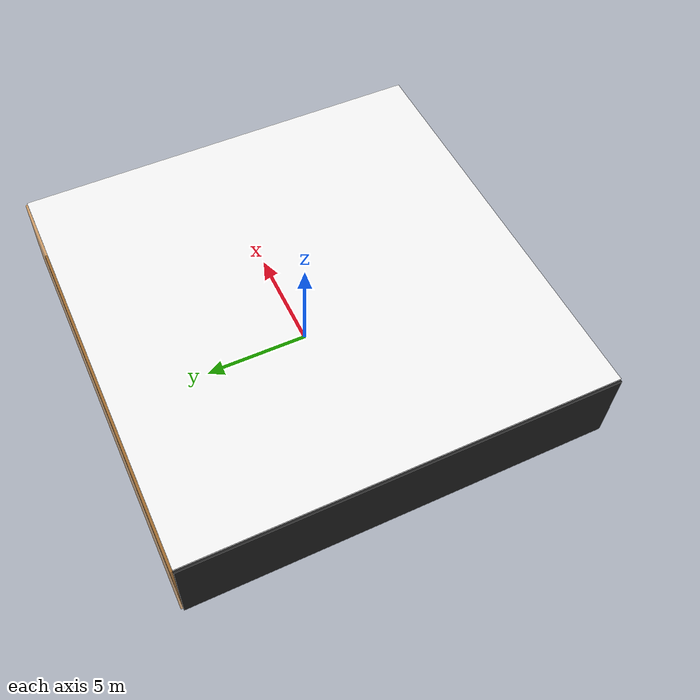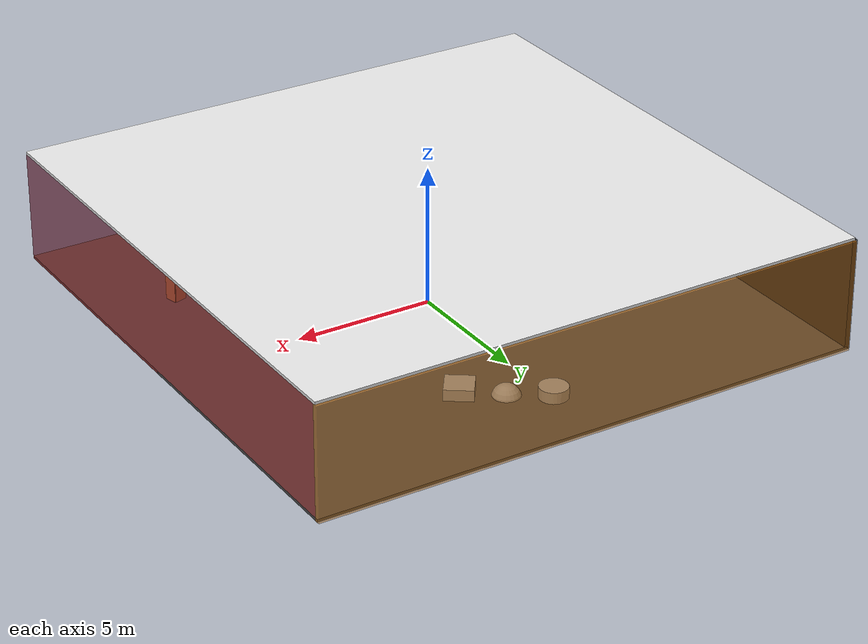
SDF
<sdf version="1.4">
 <world name="default">
  <physics type="ode">
   <max_step_size>0.001</max_step_size>
   <real_time_factor>1</real_time_factor>
   <real_time_update_rate>1000</real_time_update_rate>
   <gravity>0 0 -9.8</gravity>
  </physics>
  <scene><ambient>0.4 0.4 0.4 1</ambient><background>0.7 0.7 0.7 1</background><shadows>1</shadows></scene>
  <model name="Surrounding">
   <static>1</static>
   <link name="Ceiling">
    <collision name="Ceiling_Collision"><geometry><box><size>20 20 0.1</size></box></geometry></collision>
    <visual name="Ceiling_Visual">
     <geometry><box><size>20 20 0.1</size></box></geometry>
     <material>
      <script><uri>file://media/materials/scripts/gazebo.material</uri><name>Gazebo/White</name></script>
     </material>
    </visual>
    <pose>0 0 4.05 0 0 0</pose>
   </link>
   <link name="Wall_South">
    <collision name="Wall_South_Collision">
     <geometry><box><size>20 0 4</size></box></geometry>
     <pose>0 0 2 0 -0 0</pose>
    </collision>
    <visual name="Wall_South_Visual">
     <pose>0 0 2 0 -0 0</pose>
     <geometry><box><size>20 0 4</size></box></geometry>
     <material>
      <script><uri>file://media/materials/scripts/gazebo.material</uri><name>Gazebo/SkyBlue</name></script>
     </material>
    </visual>
    <velocity_decay><linear>0</linear><angular>0</angular></velocity_decay>
    <pose>0 -10 0 0 -0 0</pose>
   </link>
   <link name="Wall_East">
    <collision name="Wall_21_Collision">
     <geometry><box><size>20 0 4</size></box></geometry>
     <pose>0 0 2 0 -0 0</pose>
    </collision>
    <visual name="Wall_21_Visual">
     <pose>0 0 2 0 -0 0</pose>
     <geometry><box><size>20 0 4</size></box></geometry>
     <material>
      <script><uri>file://media/materials/scripts/gazebo.material</uri><name>Gazebo/RedTransparent</name></script>
     </material>
    </visual>
    <velocity_decay><linear>0</linear><angular>0</angular></velocity_decay>
    <pose>10 0 0 0 -0 1.5708</pose>
   </link>
   <link name="Wall_North">
    <collision name="Wall_22_Collision">
     <geometry><box><size>20 0.2 4</size></box></geometry>
     <pose>0 0 2 0 -0 0</pose>
    </collision>
    <visual name="Wall_22_Visual">
     <pose>0 0 2 0 -0 0</pose>
     <geometry><box><size>20 0.2 4</size></box></geometry>
     <material>
      <script>
       <uri>file://media/materials/scripts/gazebo.material</uri>
       <name>Gazebo/OrangeTransparent</name>
      </script>
     </material>
    </visual>
    <velocity_decay><linear>0</linear><angular>0</angular></velocity_decay>
    <pose>0 10 0 0 -0 0</pose>
   </link>
   <link name="Wall_West">
    <collision name="Wall_23_Collision">
     <geometry><box><size>20 0.2 4</size></box></geometry>
     <pose>0 0 2 0 -0 0</pose>
    </collision>
    <visual name="Wall_23_Visual">
     <pose>0 0 2 0 -0 0</pose>
     <geometry><box><size>20 0.2 4</size></box></geometry>
     <material>
      <script><uri>file://media/materials/scripts/gazebo.material</uri><name>Gazebo/FlatBlack</name></script>
     </material>
    </visual>
    <velocity_decay><linear>0</linear><angular>0</angular></velocity_decay>
    <pose>-10 0 0 0 0 -1.5708</pose>
   </link>
   <link name="Ground_link">
    <collision name="collision">
     <pose>0 0 .05 0 -0 0</pose>
     <geometry><box><size>20 20 0.1</size></box></geometry>
    </collision>
    <visual name="visual">
     <pose>0 0 .05 0 -0 0</pose>
     <geometry><box><size>20 20 0.1</size></box></geometry>
     <material>
      <script><uri>file://media/materials/scripts/gazebo.material</uri><name>Gazebo/DarkGrey</name></script>
     </material>
    </visual>
   </link>
   <static>1</static>
  </model>
  <spherical_coordinates>
   <surface_model>EARTH_WGS84</surface_model>
   <latitude_deg>0</latitude_deg>
   <longitude_deg>0</longitude_deg>
   <elevation>0</elevation>
   <heading_deg>0</heading_deg>
  </spherical_coordinates>
  <light name="lightball_0" type="diffuse">
   <diffuse>0.8 0.8 0.8 1</diffuse>
   <specular>0.2 0.2 0.2 1</specular>
   <attenuation>
    <range>100</range>
    <constant>0.7</constant>
    <linear>0.01</linear>
    <quadratic>0.001</quadratic>
   </attenuation>
   <direction>-0.5 0.1 -0.9</direction>
   <pose>4.89719183737 8.60299178508 1.24293634096 0 0 0</pose>
  </light>
  <light name="lightball_1" type="diffuse">
   <diffuse>0.8 0.8 0.8 1</diffuse>
   <specular>0.2 0.2 0.2 1</specular>
   <attenuation>
    <range>100</range>
    <constant>0.7</constant>
    <linear>0.01</linear>
    <quadratic>0.001</quadratic>
   </attenuation>
   <direction>-0.5 0.1 -0.9</direction>
   <pose>7.99422261866 9.20994861858 2.72450403377 0 0 0</pose>
  </light>
  <light name="lightball_2" type="diffuse">
   <diffuse>0.8 0.8 0.8 1</diffuse>
   <specular>0.2 0.2 0.2 1</specular>
   <attenuation>
    <range>100</range>
    <constant>0.7</constant>
    <linear>0.01</linear>
    <quadratic>0.001</quadratic>
   </attenuation>
   <direction>-0.5 0.1 -0.9</direction>
   <pose>-3.32164858183 -6.10327029227 2.29327600904 0 0 0</pose>
  </light>
  <light name="lightball_3" type="diffuse">
   <diffuse>0.8 0.8 0.8 1</diffuse>
   <specular>0.2 0.2 0.2 1</specular>
   <attenuation>
    <range>100</range>
    <constant>0.7</constant>
    <linear>0.01</linear>
    <quadratic>0.001</quadratic>
   </attenuation>
   <direction>-0.5 0.1 -0.9</direction>
   <pose>8.03755944559 4.99980493788 1.84287729727 0 0 0</pose>
  </light>
  <include>
   <uri>model://robocup_3Dsim_goal</uri>
   <pose>-2.22757992481 -7.69636517304 0 0 0 2.35078942669</pose>
  </include>
  <include><uri>model://cabinet</uri><pose>2.02054887912 -7.27839694447 0 0 0 0.266439779938</pose></include>
  <include>
   <uri>model://robocup_3Dsim_goal</uri>
   <pose>1.67051522316 -1.62950198634 0 0 0 2.59983390416</pose>
  </include>
  <include>
   <uri>model://textured_shapes</uri>
   <pose>1.25456503898 6.79712163372 0 0 0 0.954552723951</pose>
  </include>
  <include><uri>model://cabinet</uri><pose>7.1915283682 -4.58871614132 0 0 0 1.83493342936</pose></include>
 </world>
</sdf>

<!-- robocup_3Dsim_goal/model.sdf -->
<sdf version="1.5">
  <model name="robocup_3d_goal">
    <static>true</static>
    <link name="left_post">
      <pose>0 1.05 0.45 0 0 0</pose>
      <collision name="collision">
        <geometry>
          <cylinder>
            <radius>0.05</radius>
            <length>0.9</length>
          </cylinder>
        </geometry>
      </collision>
      <visual name="visual">
        <geometry>
          <cylinder>
            <radius>0.05</radius>
            <length>0.9</length>
          </cylinder>
        </geometry>
        <material>
          <script>
            <uri>file://media/materials/scripts/gazebo.material</uri>
            <name>Gazebo/ZincYellow</name>
          </script>
        </material>
      </visual>
    </link>
    <link name="left_support_horiz_lower">
      <pose>0.30 1.05 0.01 0 0 0</pose>
      <collision name="collision">
        <geometry>
          <box>
            <size>0.50 0.02 0.02</size>
          </box>
        </geometry>
      </collision>
      <visual name="visual">
        <geometry>
          <box>
            <size>0.50 0.02 0.02</size>
          </box>
        </geometry>
        <material>
          <script>
            <uri>file://media/materials/scripts/gazebo.material</uri>
            <name>Gazebo/White</name>
          </script>
        </material>
      </visual>
    </link>
    <link name="left_support_horiz_upper">
      <pose>0.30 1.05 0.79 0 0 0</pose>
      <collision name="collision">
        <geometry>
          <box>
            <size>0.50 0.02 0.02</size>
          </box>
        </geometry>
      </collision>
      <visual name="visual">
        <geometry>
          <box>
            <size>0.50 0.02 0.02</size>
          </box>
        </geometry>
        <material>
          <script>
            <uri>file://media/materials/scripts/gazebo.material</uri>
            <name>Gazebo/White</name>
          </script>
        </material>
      </visual>
    </link>
    <link name="left_support_vertical">
      <pose>0.56 1.05 0.4 0 1.5708 0</pose>
      <collision name="collision">
        <geometry>
          <box>
            <size>0.80 0.02 0.02</size>
          </box>
        </geometry>
      </collision>
      <visual name="visual">
        <geometry>
          <box>
            <size>0.80 0.02 0.02</size>
          </box>
        </geometry>
        <material>
          <script>
            <uri>file://media/materials/scripts/gazebo.material</uri>
            <name>Gazebo/White</name>
          </script>
        </material>
      </visual>
    </link>
    <link name="right_support_horiz_lower">
      <pose>0.30 -1.05 0.01 0 0 0</pose>
      <collision name="collision">
        <geometry>
          <box>
            <size>0.50 0.02 0.02</size>
          </box>
        </geometry>
      </collision>
      <visual name="visual">
        <geometry>
          <box>
            <size>0.50 0.02 0.02</size>
          </box>
        </geometry>
        <material>
          <script>
            <uri>file://media/materials/scripts/gazebo.material</uri>
            <name>Gazebo/White</name>
          </script>
        </material>
      </visual>
    </link>
    <link name="right_support_horiz_upper">
      <pose>0.30 -1.05 0.79 0 0 0</pose>
      <collision name="collision">
        <geometry>
          <box>
            <size>0.50 0.02 0.02</size>
          </box>
        </geometry>
      </collision>
      <visual name="visual">
        <geometry>
          <box>
            <size>0.50 0.02 0.02</size>
          </box>
        </geometry>
        <material>
          <script>
            <uri>file://media/materials/scripts/gazebo.material</uri>
            <name>Gazebo/White</name>
          </script>
        </material>
      </visual>
    </link>
    <link name="right_support_vertical">
      <pose>0.56 -1.05 0.4 0 1.5708 0</pose>
      <collision name="collision">
        <geometry>
          <box>
            <size>0.80 0.02 0.02</size>
          </box>
        </geometry>
      </collision>
      <visual name="visual">
        <geometry>
          <box>
            <size>0.80 0.02 0.02</size>
          </box>
        </geometry>
        <material>
          <script>
            <uri>file://media/materials/scripts/gazebo.material</uri>
            <name>Gazebo/White</name>
          </script>
        </material>
      </visual>
    </link>
    <link name="center_support_horiz_lower">
      <pose>0.56 0 0.01 0 1.5708 0</pose>
      <collision name="collision">
        <geometry>
          <box>
            <size>0.02 2.08 0.02</size>
          </box>
        </geometry>
      </collision>
      <visual name="visual">
        <geometry>
          <box>
            <size>0.02 2.08 0.02</size>
          </box>
        </geometry>
        <material>
          <script>
            <uri>file://media/materials/scripts/gazebo.material</uri>
            <name>Gazebo/White</name>
          </script>
        </material>
      </visual>
    </link>
    <link name="center_support_horiz_upper">
      <pose>0.56 0 0.79 0 1.5708 0</pose>
      <collision name="collision">
        <geometry>
          <box>
            <size>0.02 2.08 0.02</size>
          </box>
        </geometry>
      </collision>
      <visual name="visual">
        <geometry>
          <box>
            <size>0.02 2.08 0.02</size>
          </box>
        </geometry>
        <material>
          <script>
            <uri>file://media/materials/scripts/gazebo.material</uri>
            <name>Gazebo/White</name>
          </script>
        </material>
      </visual>
    </link>
    <link name="right_post">
      <pose>0 -1.05 0.45 0 0 0</pose>
      <collision name="collision">
        <geometry>
          <cylinder>
            <radius>0.05</radius>
            <length>0.9</length>
          </cylinder>
        </geometry>
      </collision>
      <visual name="visual">
        <geometry>
          <cylinder>
            <radius>0.05</radius>
            <length>0.9</length>
          </cylinder>
        </geometry>
        <material>
          <script>
            <uri>file://media/materials/scripts/gazebo.material</uri>
            <name>Gazebo/ZincYellow</name>
          </script>
        </material>
      </visual>
    </link>
    <link name="crossbar">
      <pose>0 0 0.85 1.57 1.57 0</pose>
      <collision name="collision">
        <geometry>
          <cylinder>
            <radius>0.05</radius>
            <length>2.0</length>
          </cylinder>
        </geometry>
      </collision>
      <visual name="visual">
        <geometry>
          <cylinder>
            <radius>0.05</radius>
            <length>2.0</length>
          </cylinder>
        </geometry>
        <material>
          <script>
            <uri>file://media/materials/scripts/gazebo.material</uri>
            <name>Gazebo/ZincYellow</name>
          </script>
        </material>
      </visual>
    </link>
    <link name="center_net">
      <pose>0.56 0 0.40 0 0 0</pose>
      <collision name="collision">
        <geometry>
          <box>
            <size>0.01 2.1 0.80</size>
          </box>
        </geometry>
      </collision>
      <visual name="visual">
        <geometry>
          <box>
            <size>0.01 2.1 0.80</size>
          </box>
        </geometry>
        <material>
          <script>
            <uri>model://../model_source/models/robocup09_spl_field/materials/scripts/</uri>
            <uri>model://../model_source/models/robocup09_spl_field/materials/textures/</uri>
            <name>RoboCup/Net</name>
          </script>
        </material>
      </visual>
    </link>
    <link name="left_net">
      <pose>0.30 1.05 0.40 0 0 0</pose>
      <collision name="collision">
        <geometry>
          <box>
            <size>0.50 0.01 0.76</size>
          </box>
        </geometry>
      </collision>
      <visual name="visual">
        <geometry>
          <box>
            <size>0.50 0.01 0.76</size>
          </box>
        </geometry>
        <material>
          <script>
            <uri>model://../model_source/models/robocup09_spl_field/materials/scripts/</uri>
            <uri>model://../model_source/models/robocup09_spl_field/materials/textures/</uri>
            <name>RoboCup/Net</name>
          </script>
        </material>
      </visual>
    </link>
    <link name="right_net">
      <pose>0.30 -1.05 0.40 0 0 0</pose>
      <collision name="collision">
        <geometry>
          <box>
            <size>0.50 0.01 0.76</size>
          </box>
        </geometry>
      </collision>
      <visual name="visual">
        <geometry>
          <box>
            <size>0.50 0.01 0.76</size>
          </box>
        </geometry>
        <material>
          <script>
            <uri>model://../model_source/models/robocup09_spl_field/materials/scripts/</uri>
            <uri>model://../model_source/models/robocup09_spl_field/materials/textures/</uri>
            <name>RoboCup/Net</name>
          </script>
        </material>
      </visual>
    </link>
  </model>
</sdf>

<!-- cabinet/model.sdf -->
<sdf version="1.5">
  <model name="cabinet">
    <static>true</static>
    <link name="cabinet_bottom_plate">
      <inertial>
        <pose>0 0 -1 0 0 0</pose>
        <inertia>
          <ixx>2.050000</ixx>
          <ixy>0</ixy>
          <ixz>0</ixz>
          <iyy>2.050000</iyy>
          <iyz>0</iyz>
          <izz>2.050000</izz>
        </inertia>
        <mass>25.000000</mass>
      </inertial>
      <collision name="cabinet_bottom_plate_geom">
        <pose>0 0 0.010000 0 0 0</pose>
        <geometry>
          <box>
            <size>0.450000 0.450000 0.020000</size>
          </box>
        </geometry>
      </collision>
      <visual name="cabinet_bottom_plate_geom_visual">
        <pose>0 0 0.010000 0 0 0</pose>
        <geometry>
          <box>
            <size>0.450000 0.450000 0.020000</size>
          </box>
        </geometry>
        <material>
          <script>
            <uri>model://media/materials/scripts/gazebo.material</uri>
            <name>Gazebo/Wood</name>
          </script>
        </material>
      </visual>
      <collision name="cabinet_bottom_plate_geom_cabinet_back_plate">
        <pose>0.235000 0 0.510000 0 0 0</pose>
        <geometry>
          <box>
            <size>0.020000 0.450000 1.020000</size>
          </box>
        </geometry>
      </collision>
      <visual name="cabinet_bottom_plate_geom_cabinet_back_plate_visual">
        <pose>0.235000 0 0.510000 0 0 0</pose>
        <geometry>
          <box>
            <size>0.020000 0.450000 1.020000</size>
          </box>
        </geometry>
        <material>
          <script>
            <uri>model://media/materials/scripts/gazebo.material</uri>
            <name>Gazebo/Wood</name>
          </script>
        </material>
      </visual>
      <collision name="cabinet_bottom_plate_geom_cabinet_left_plate">
        <pose>0 0.235000 0.510000 0 0 0</pose>
        <geometry>
          <box>
            <size>0.450000 0.020000 1.020000</size>
          </box>
        </geometry>
      </collision>
      <visual name="cabinet_bottom_plate_geom_cabinet_left_plate_visual">
        <pose>0 0.235000 0.510000 0 0 0</pose>
        <geometry>
          <box>
            <size>0.450000 0.020000 1.020000</size>
          </box>
        </geometry>
        <material>
          <script>
            <uri>model://media/materials/scripts/gazebo.material</uri>
            <name>Gazebo/Wood</name>
          </script>
        </material>
      </visual>
      <collision name="cabinet_bottom_plate_geom_cabinet_middle_plate">
        <pose>0 0 0.510000 0 0 0</pose>
        <geometry>
          <box>
            <size>0.450000 0.450000 0.020000</size>
          </box>
        </geometry>
      </collision>
      <visual name="cabinet_bottom_plate_geom_cabinet_middle_plate_visual">
        <pose>0 0 0.510000 0 0 0</pose>
        <geometry>
          <box>
            <size>0.450000 0.450000 0.020000</size>
          </box>
        </geometry>
        <material>
          <script>
            <uri>model://media/materials/scripts/gazebo.material</uri>
            <name>Gazebo/Wood</name>
          </script>
        </material>
      </visual>
      <collision name="cabinet_bottom_plate_geom_cabinet_right_plate">
        <pose>0 -0.235000 0.510000 0 0 0</pose>
        <geometry>
          <box>
            <size>0.450000 0.020000 1.020000</size>
          </box>
        </geometry>
      </collision>
      <visual name="cabinet_bottom_plate_geom_cabinet_right_plate_visual">
        <pose>0 -0.235000 0.510000 0 0 0</pose>
        <geometry>
          <box>
            <size>0.450000 0.020000 1.020000</size>
          </box>
        </geometry>
        <material>
          <script>
            <uri>model://media/materials/scripts/gazebo.material</uri>
            <name>Gazebo/Wood</name>
          </script>
        </material>
      </visual>
      <collision name="cabinet_bottom_plate_geom_cabinet_top_plate">
        <pose>0 0 1.010000 0 0 0</pose>
        <geometry>
          <box>
            <size>0.450000 0.450000 0.020000</size>
          </box>
        </geometry>
      </collision>
      <visual name="cabinet_bottom_plate_geom_cabinet_top_plate_visual">
        <pose>0 0 1.010000 0 0 0</pose>
        <geometry>
          <box>
            <size>0.450000 0.450000 0.020000</size>
          </box>
        </geometry>
        <material>
          <script>
            <uri>model://media/materials/scripts/gazebo.material</uri>
            <name>Gazebo/Wood</name>
          </script>
        </material>
      </visual>
    </link>
  </model>
</sdf>

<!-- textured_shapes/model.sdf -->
<sdf version="1.6">
  <model name="textured_shapes">
    <pose>0 0 0.5 0 0 0</pose>
    <link name="box">
      <pose>0 -1.5 0 0 0 0</pose>
      <collision name="collision">
        <geometry>
          <box>
            <size>1 1 1</size>
          </box>
        </geometry>
      </collision>
      <visual name="visual">
        <geometry>
          <box>
            <size>1 1 1</size>
          </box>
        </geometry>
        <material>
          <script>
            <uri>model://../model_source/models/textured_shapes/materials/scripts</uri>
            <uri>model://../model_source/models/textured_shapes/materials/textures</uri>
            <name>TexturedShape/Squares</name>
          </script>
        </material>
      </visual>
    </link>
    <link name="sphere">
      <collision name="collision">
        <geometry>
          <sphere>
            <radius>0.5</radius>
          </sphere>
        </geometry>
      </collision>
      <visual name="visual">
        <geometry>
          <sphere>
            <radius>0.5</radius>
          </sphere>
        </geometry>
        <material>
          <script>
            <uri>model://../model_source/models/textured_shapes/materials/scripts</uri>
            <uri>model://../model_source/models/textured_shapes/materials/textures</uri>
            <name>TexturedShape/Squares</name>
          </script>
        </material>
      </visual>
    </link>
    <link name="cylinder">
      <pose>0 1.5 0 0 0 0</pose>
      <collision name="collision">
        <geometry>
          <cylinder>
            <radius>0.5</radius>
            <length>1</length>
          </cylinder>
        </geometry>
      </collision>
      <visual name="visual">
        <geometry>
          <cylinder>
            <radius>0.5</radius>
            <length>1</length>
          </cylinder>
        </geometry>
        <material>
          <script>
            <uri>model://../model_source/models/textured_shapes/materials/scripts</uri>
            <uri>model://../model_source/models/textured_shapes/materials/textures</uri>
            <name>TexturedShape/Squares</name>
          </script>
        </material>
      </visual>
    </link>
  </model>
</sdf>
